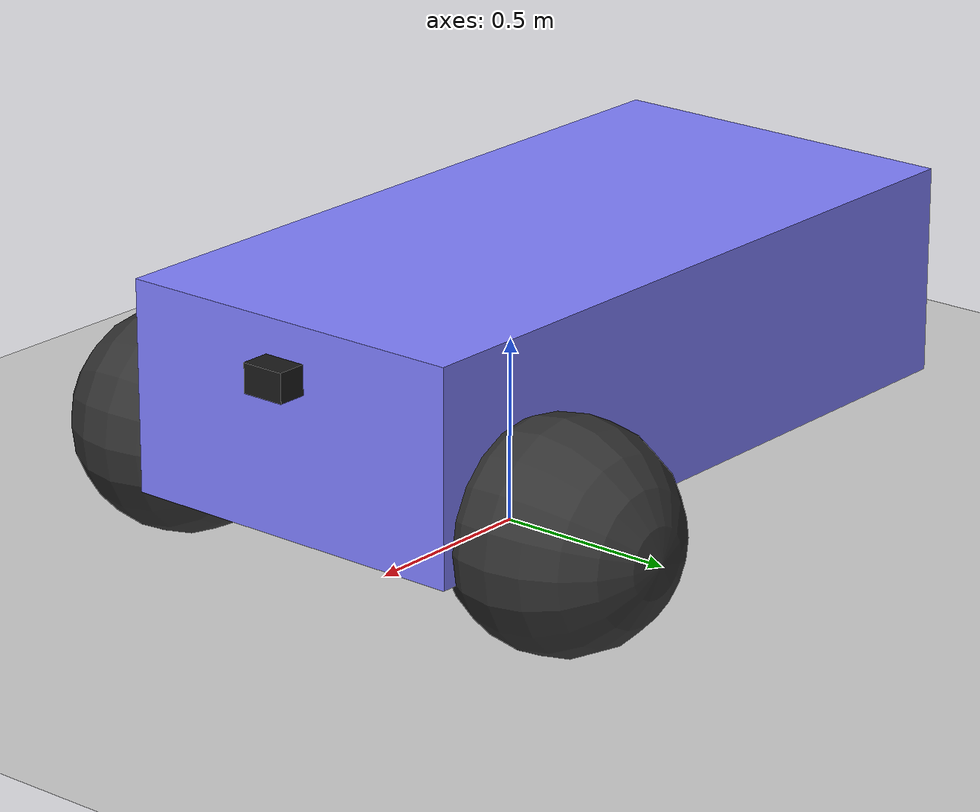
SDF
<?xml version="1.0" ?>
<sdf version='1.10'>
  <world name='empty'>
    <physics name='1ms' type='ignored'>
      <max_step_size>0.0050000000000000001</max_step_size>
      <real_time_factor>1</real_time_factor>
      <real_time_update_rate>500</real_time_update_rate>
    </physics>
    <plugin name='gz::sim::systems::Physics' filename='gz-sim-physics-system'/>
    <plugin name='gz::sim::systems::UserCommands' filename='gz-sim-user-commands-system'/>
    <plugin name='gz::sim::systems::SceneBroadcaster' filename='gz-sim-scene-broadcaster-system'/>
    <plugin name='gz::sim::systems::Contact' filename='gz-sim-contact-system'/>
    <plugin name="gz::sim::systems::Sensors" filename="gz-sim-sensors-system">
        <render_engine>ogre2</render_engine>
    </plugin>
    <gravity>0 0 -9.8000000000000007</gravity>
    <magnetic_field>5.5644999999999998e-06 2.2875799999999999e-05 -4.2388400000000002e-05</magnetic_field>
    <atmosphere type='adiabatic'/>
    <scene>
      <ambient>0.400000006 0.400000006 0.400000006 1</ambient>
      <background>0.699999988 0.699999988 0.699999988 1</background>
      <shadows>true</shadows>
    </scene>
    <gui>
      <camera name='user_camera'>
        <pose>0 0 10 0 -1.5700000000004057 0</pose>
      </camera>
    </gui>

    <model name='ground_plan'>
      <static>true</static>
      <link name='link'>
        <collision name='collision'>
          <geometry>
            <plane>
              <normal>0 0 1</normal>
              <size>100 100</size>
            </plane>
          </geometry>
          <surface>
            <friction>
              <ode/>
            </friction>
            <bounce/>
            <contact/>
          </surface>
        </collision>
        <visual name='visual'>
          <geometry>
            <plane>
              <normal>0 0 1</normal>
              <size>100 100</size>
            </plane>
          </geometry>
          <material>
            <ambient>0.800000012 0.800000012 0.800000012 1</ambient>
            <diffuse>0.800000012 0.800000012 0.800000012 1</diffuse>
            <specular>0.800000012 0.800000012 0.800000012 1</specular>
          </material>
        </visual>
        <pose>0 0 0 0 0 0</pose>
        <inertial>
          <pose>0 0 0 0 0 0</pose>
          <mass>1</mass>
          <inertia>
            <ixx>1</ixx>
            <ixy>0</ixy>
            <ixz>0</ixz>
            <iyy>1</iyy>
            <iyz>0</iyz>
            <izz>1</izz>
          </inertia>
        </inertial>
        <enable_wind>false</enable_wind>
      </link>
      <pose>0 0 0 0 0 0</pose>
      <self_collide>false</self_collide>
    </model>

    <!-- 수정된 부분: model:// 프로토콜 사용 -->
    <include>
      <uri>model://vehicle_test</uri>
      <name>vehicle_test</name>
      <pose>0 0 0.32 0 0 0</pose>
    </include>

    <light name='sun' type='directional'>
      <pose>0 0 10 0 0 0</pose>
      <cast_shadows>true</cast_shadows>
      <intensity>1</intensity>
      <direction>-0.5 0.10000000000000001 -0.90000000000000002</direction>
      <diffuse>0.800000012 0.800000012 0.800000012 1</diffuse>
      <specular>0.200000003 0.200000003 0.200000003 1</specular>
      <attenuation>
        <range>1000</range>
        <linear>0.0099999997764825821</linear>
        <constant>0.89999997615814209</constant>
        <quadratic>0.0010000000474974513</quadratic>
      </attenuation>
      <spot>
        <inner_angle>0</inner_angle>
        <outer_angle>0</outer_angle>
        <falloff>0</falloff>
      </spot>
    </light>
  </world>
</sdf>

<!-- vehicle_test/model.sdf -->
<sdf version='1.10'>
  <model name='vehicle_test'>
    <link name="chassis">
        <pose>-0.151427 -0 0.175 0 -0 0</pose>
        <inertial>
            <mass>1.14395</mass>
            <inertia>
                <ixx>0.126164</ixx>
                <ixy>0</ixy>
                <ixz>0</ixz>
                <iyy>0.416519</iyy>
                <iyz>0</iyz>
                <izz>0.481014</izz>
            </inertia>
        </inertial>
        <visual name="visual_chassis">
            <geometry>
                <box>
                <size>2.01142 1 0.568726</size>
                </box>
            </geometry>
            <material>
                <ambient>0.5 0.5 1.0 1</ambient>
                <diffuse>0.5 0.5 1.0 1</diffuse>
                <specular>0.0 0.0 1.0 1</specular>
            </material>
        </visual>
        <collision name="collision_chassis">
            <geometry>
                <box>
                <size>2.01142 1 0.568726</size>
                </box>
            </geometry>
        </collision>
    </link>

    <link name='left_wheel'>
        <pose>0.554283 0.625029 -0.025 -1.5707 0 0</pose>
        <inertial>
          <mass>2</mass>
          <inertia>
            <ixx>0.145833</ixx>
            <ixy>0</ixy>
            <ixz>0</ixz>
            <iyy>0.145833</iyy>
            <iyz>0</iyz>
            <izz>0.125</izz>
          </inertia>
        </inertial>
        <visual name='visual_left_wheel'>
          <geometry>
            <sphere>
              <radius>0.3</radius>
            </sphere>
          </geometry>
          <material>
            <ambient>0.2 0.2 0.2 1</ambient>
            <diffuse>0.2 0.2 0.2 1</diffuse>
            <specular>0.2 0.2 0.2 1</specular>
          </material>
        </visual>
        <collision name='collision_left_wheel'>
          <geometry>
            <sphere>
              <radius>0.3</radius>
            </sphere>
          </geometry>
        </collision>
    </link>

    <link name='right_wheel'>
        <pose>0.554282 -0.625029 -0.025 -1.5707 0 0</pose>
        <inertial>
            <mass>2</mass>
            <inertia>
            <ixx>0.145833</ixx>
            <ixy>0</ixy>
            <ixz>0</ixz>
            <iyy>0.145833</iyy>
            <iyz>0</iyz>
            <izz>0.125</izz>
            </inertia>
        </inertial>
        <visual name='visual_right_wheel'>
            <geometry>
            <sphere>
                <radius>0.3</radius>
            </sphere>
            </geometry>
            <material>
            <ambient>0.2 0.2 0.2 1</ambient>
            <diffuse>0.2 0.2 0.2 1</diffuse>
            <specular>0.2 0.2 0.2 1</specular>
            </material>
        </visual>
        <collision name='collision_right_wheel'>
            <geometry>
            <sphere>
                <radius>0.3</radius>
            </sphere>
            </geometry>
        </collision>
    </link>

    <link name='caster'>
        <pose>-0.957138 -0 -0.125 0 -0 0</pose>
        <inertial>
            <mass>1</mass>
            <inertia>
            <ixx>0.1</ixx>
            <ixy>0</ixy>
            <ixz>0</ixz>
            <iyy>0.1</iyy>
            <iyz>0</iyz>
            <izz>0.1</izz>
            </inertia>
        </inertial>
        <visual name='visual_caster'>
            <geometry>
            <sphere>
                <radius>0.2</radius>
            </sphere>
            </geometry>
            <material>
            <ambient>0.2 0.2 0.2 1</ambient>
            <diffuse>0.2 0.2 0.2 1</diffuse>
            <specular>0.2 0.2 0.2 1</specular>
            </material>
        </visual>
        <collision name='collision_caster'>
            <geometry>
            <sphere>
                <radius>0.2</radius>
            </sphere>
            </geometry>
        </collision>
    </link>

    <link name="camera_link">
        <pose relative_to="chassis">1.05 0 0.15 0 0 0</pose>

        <inertial>
            <mass>0.05</mass>
            <inertia>
                <ixx>0.0001</ixx>
                <ixy>0</ixy>
                <ixz>0</ixz>
                <iyy>0.0001</iyy>
                <iyz>0</iyz>
                <izz>0.0001</izz>
            </inertia>
        </inertial>
        <visual name="camera_visual">
            <geometry>
                <box>
                    <size>0.08 0.12 0.08</size>
                </box>
            </geometry>
            <material>
                <ambient>0.1 0.1 0.1 1</ambient>
                <diffuse>0.1 0.1 0.1 1</diffuse>
                <specular>0.2 0.2 0.2 1</specular>
            </material>
        </visual>
        <collision name="camera_collision">
            <geometry>
                <box>
                    <size>0.08 0.12 0.08</size>
                </box>
            </geometry>
        </collision>
        <sensor name="front_camera" type="camera">
            <pose>0.04 0 0 0 0 0</pose>
            <always_on>true</always_on>
            <update_rate>30</update_rate>
            <visualize>true</visualize>
            <topic>/model/vehicle_test/camera/image</topic>
            <camera>
                <horizontal_fov>1.0472</horizontal_fov>
                <image>
                    <width>640</width>
                    <height>480</height>
                    <format>R8G8B8</format>
                </image>
                <clip>
                    <near>0.05</near>
                    <far>100.0</far>
                </clip>
            </camera>
        </sensor>
    </link>

    <joint name='left_wheel_joint' type='revolute'>
        <parent>chassis</parent>
        <child>left_wheel</child>
        <axis>
            <xyz>0 0 1</xyz>
            <limit>
            <lower>-1.79769e+308</lower>
            <upper>1.79769e+308</upper>
            </limit>
        </axis>
    </joint>

    <joint name='right_wheel_joint' type='revolute'>
        <parent>chassis</parent>
        <child>right_wheel</child>
        <axis>
            <xyz>0 0 1</xyz>
            <limit>
            <lower>-1.79769e+308</lower>
            <upper>1.79769e+308</upper>
            </limit>
        </axis>
    </joint>

    <joint name='caster_wheel' type='ball'>
        <parent>chassis</parent>
        <child>caster</child>
    </joint>

    <joint name="camera_joint" type="fixed">
        <parent>chassis</parent>
        <child>camera_link</child>
    </joint>

    <plugin filename="gz-sim-diff-drive-system" name="gz::sim::systems::DiffDrive">
        <left_joint>left_wheel_joint</left_joint>
        <right_joint>right_wheel_joint</right_joint>
        <wheel_separation>1.25</wheel_separation>
        <wheel_radius>0.3</wheel_radius>
        <odom_publish_frequency>1</odom_publish_frequency>
        <max_linear_acceleration>1</max_linear_acceleration>
        <min_linear_acceleration>-1</min_linear_acceleration>
        <max_angular_acceleration>2</max_angular_acceleration>
        <min_angular_acceleration>-2</min_angular_acceleration>
        <max_linear_velocity>0.5</max_linear_velocity>
        <min_linear_velocity>-0.5</min_linear_velocity>
        <max_angular_velocity>1</max_angular_velocity>
        <min_angular_velocity>-1</min_angular_velocity>
    </plugin>
    <plugin filename="gz-sim-joint-state-publisher-system" name="gz::sim::systems::JointStatePublisher">
        <topic>/model/vehicle_test/joint_state</topic>
    </plugin>
  </model>
</sdf>
